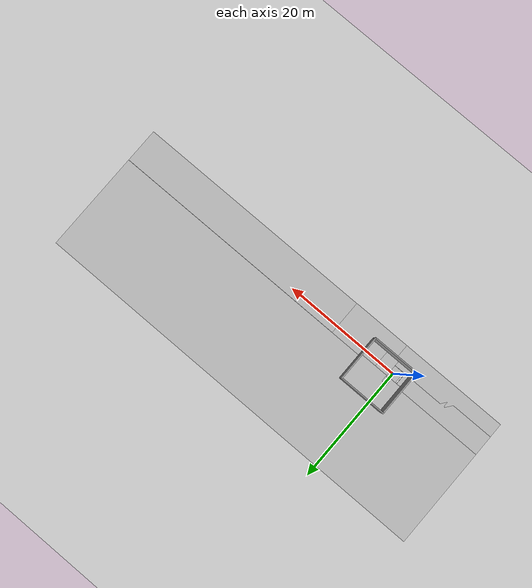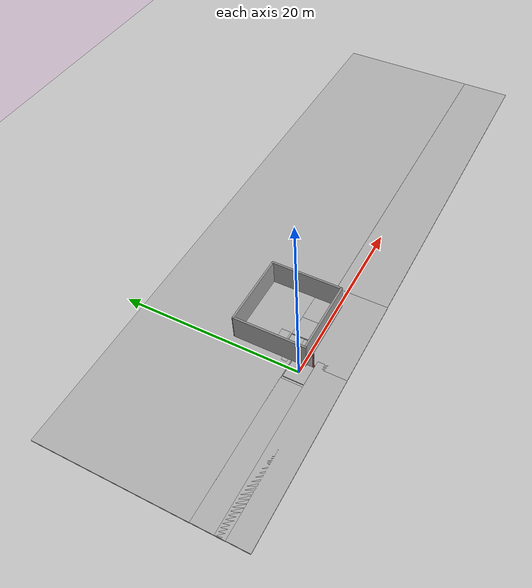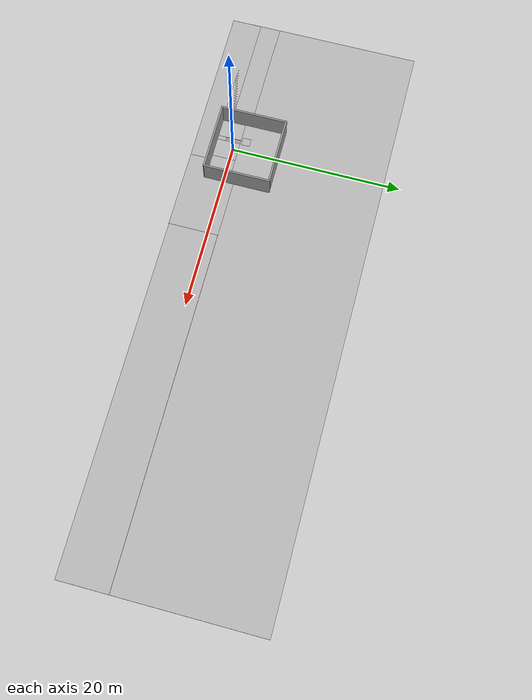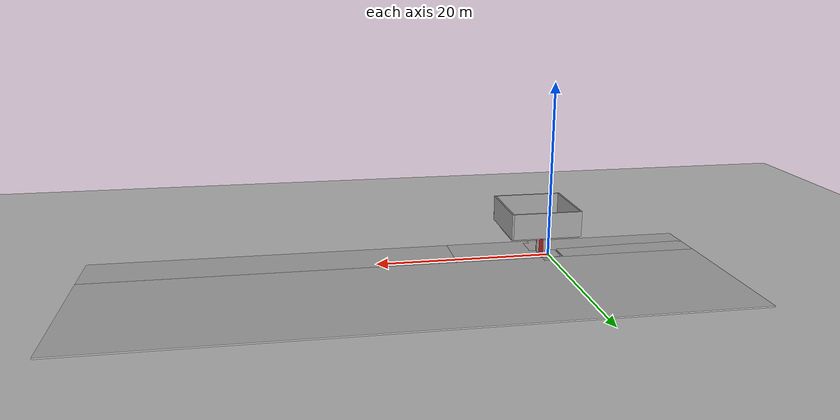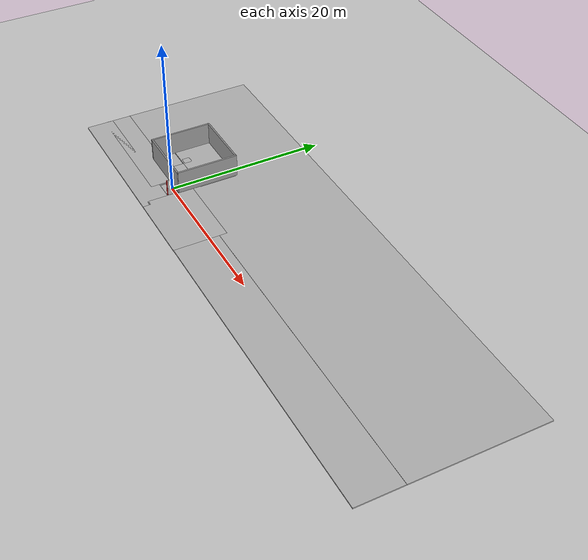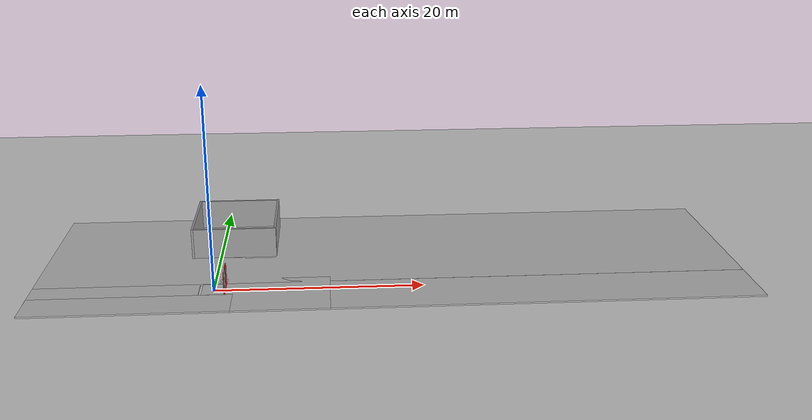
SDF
<sdf version="1.6">
 <world name="default">
  <light name="sun" type="directional">
   <pose>0 0 10 0 -0 0</pose>
   <diffuse>0.8 0.8 0.8 1</diffuse>
   <specular>0.1 0.1 0.1 1</specular>
   <attenuation>
    <range>1000</range>
    <constant>0.9</constant>
    <linear>0.01</linear>
    <quadratic>0.001</quadratic>
   </attenuation>
   <direction>-0.5 0.5 -1</direction>
  </light>
  <model name="switch0">
   <pose>0.796934 1.88997 0.150508 -0 -2e-06 0.006404</pose>
   <link name="link">
    <collision name="collision">
     <geometry><box><size>0.672513 0.615037 0.000748</size></box></geometry>
    </collision>
    <visual name="visual"><geometry><box><size>0.672513 0.615037 0.000748</size></box></geometry></visual>
    <inertial>
     <inertia><ixx>1</ixx><ixy>0</ixy><ixz>0</ixz><iyy>1</iyy><iyz>0</iyz><izz>1</izz></inertia>
     <mass>1</mass>
    </inertial>
   </link>
   <plugin name="model_push" filename="libmodel_push.so"/>
  </model>
  <model name="switch1">
   <pose>0.740695 1.8503 4.15491 0 -0 0.014774</pose>
   <link name="link">
    <collision name="collision">
     <geometry><box><size>0.878691 0.928055 0.000571</size></box></geometry>
    </collision>
    <visual name="visual"><geometry><box><size>0.878691 0.928055 0.000571</size></box></geometry></visual>
    <inertial>
     <inertia><ixx>1</ixx><ixy>0</ixy><ixz>0</ixz><iyy>1</iyy><iyz>0</iyz><izz>1</izz></inertia>
     <mass>1</mass>
    </inertial>
   </link>
   <plugin name="model_push" filename="libmodel_push.so"/>
  </model>
  <model name="ground_plane">
   <static>1</static>
   <link name="link">
    <collision name="collision">
     <geometry><plane><normal>0 0 1</normal><size>100 100</size></plane></geometry>
     <surface><friction><ode><mu>100</mu><mu2>50</mu2></ode></friction></surface>
    </collision>
    <visual name="visual">
     <cast_shadows>0</cast_shadows>
     <geometry><plane><normal>0 0 1</normal><size>100 100</size></plane></geometry>
     <material>
      <script><uri>file://media/materials/scripts/gazebo.material</uri><name>Gazebo/Grey</name></script>
     </material>
    </visual>
   </link>
  </model>
  <plugin name="elevator_event_plugin" filename="libSimEventsPlugin.so">
   <region><name>region1</name><volume><min>-1.0 1.5 0</min><max>-0.2 2.0 1</max></volume></region>
   <region><name>region2</name><volume><min>-1.0 1.5 3.5</min><max>-0.2 2.0 4.5</max></volume></region>
   <event>
    <name>region1_event</name>
    <type>occupied</type>
    <region>region1</region>
    <topic>~/elevator</topic>
    <msg_data>0</msg_data>
   </event>
   <event>
    <name>region2_event</name>
    <type>occupied</type>
    <region>region2</region>
    <topic>~/elevator</topic>
    <msg_data>1</msg_data>
   </event>
  </plugin>
  <model name="elevator">
   <pose>0 0 0.075 0 0 -2e-06</pose>
   <link name="link">
    <inertial>
     <mass>800</mass>
     <inertia><ixx>1</ixx><ixy>0</ixy><ixz>0</ixz><iyy>1</iyy><iyz>0</iyz><izz>1</izz></inertia>
    </inertial>
    <collision name="floor_collision"><geometry><box><size>2.25 2.25 0.15</size></box></geometry></collision>
    <visual name="floor_visual"><geometry><box><size>2.25 2.25 0.15</size></box></geometry></visual>
    <collision name="wall1_collision">
     <pose>1.0745 0.5725 1.125 0 -0 0</pose>
     <geometry><box><size>0.1 1.15 2.25</size></box></geometry>
    </collision>
    <visual name="wall1_visual">
     <pose>1.0745 0.5725 1.125 0 -0 0</pose>
     <geometry><box><size>0.1 1.15 2.25</size></box></geometry>
     <material><script><name>Gazebo/Red</name><uri>__default__</uri></script></material>
    </visual>
    <collision name="wall2_collision">
     <pose>1.0745 -1.0625 1.125 0 -0 0</pose>
     <geometry><box><size>0.1 0.125 2.25</size></box></geometry>
    </collision>
    <visual name="wall2_visual">
     <pose>1.0745 -1.0625 1.125 0 -0 0</pose>
     <geometry><box><size>0.1 0.125 2.25</size></box></geometry>
     <material><script><name>Gazebo/Red</name><uri>__default__</uri></script></material>
    </visual>
   </link>
   <link name="door">
    <pose>1.0745 -0.5 1.125 0 -0 0</pose>
    <collision name="collision"><geometry><box><size>0.08 1 2.25</size></box></geometry></collision>
    <visual name="visual"><geometry><box><size>0.08 1 2.25</size></box></geometry></visual>
    <inertial>
     <inertia><ixx>1</ixx><ixy>0</ixy><ixz>0</ixz><iyy>1</iyy><iyz>0</iyz><izz>1</izz></inertia>
     <mass>1</mass>
    </inertial>
   </link>
   <joint name="door" type="prismatic">
    <parent>link</parent>
    <child>door</child>
    <axis>
     <xyz>0 1 0</xyz>
     <limit><lower>0</lower><upper>1</upper><effort>10</effort></limit>
     <dynamics>
      <damping>2</damping>
      <spring_reference>0</spring_reference>
      <spring_stiffness>0</spring_stiffness>
     </dynamics>
     <use_parent_model_frame>0</use_parent_model_frame>
    </axis>
   </joint>
   <joint name="lift" type="prismatic">
    <parent>world</parent>
    <child>link</child>
    <axis>
     <xyz>0 0 1</xyz>
     <limit><lower>0</lower><upper>10</upper><effort>100000</effort></limit>
     <dynamics>
      <damping>50</damping>
      <spring_reference>0</spring_reference>
      <spring_stiffness>0</spring_stiffness>
     </dynamics>
     <use_parent_model_frame>0</use_parent_model_frame>
    </axis>
    <physics>
     <ode><implicit_spring_damper>1</implicit_spring_damper><limit><cfm>0</cfm><erp>0.2</erp></limit></ode>
    </physics>
   </joint>
   <plugin name="elevator_plugin" filename="libElevatorPlugin.so">
    <lift_joint>elevator::lift</lift_joint>
    <door_joint>elevator::door</door_joint>
    <floor_height>4.0775</floor_height>
    <door_wait_time>12</door_wait_time>
    <topic>~/elevator</topic>
   </plugin>
  </model>
  <gravity>0 0 -9.8</gravity>
  <magnetic_field>6e-06 2.3e-05 -4.2e-05</magnetic_field>
  <atmosphere type="adiabatic"/>
  <physics name="default_physics" default="0" type="ode">
   <max_step_size>0.001</max_step_size>
   <real_time_factor>1</real_time_factor>
   <real_time_update_rate>1000</real_time_update_rate>
  </physics>
  <scene><ambient>0.4 0.4 0.4 1</ambient><background>0.7 0.7 0.7 1</background><shadows>1</shadows></scene>
  <spherical_coordinates>
   <surface_model>EARTH_WGS84</surface_model>
   <latitude_deg>0</latitude_deg>
   <longitude_deg>0</longitude_deg>
   <elevation>0</elevation>
   <heading_deg>0</heading_deg>
  </spherical_coordinates>
  <model name="floor0_clone_3_clone_clone">
   <pose>2.34262 3.54893 4.07963 0 -0 0</pose>
   <static>1</static>
   <link name="link">
    <collision name="floor_collision">
     <geometry><box><size>7.57512 4.64073 0.15</size></box></geometry>
    </collision>
    <visual name="floor_visual"><geometry><box><size>7.57512 4.64073 0.15</size></box></geometry></visual>
   </link>
  </model>
  <model name="floor0_clone_4_clone">
   <pose>17.3406 9.66533 0.078192 0 -0 0</pose>
   <static>1</static>
   <link name="link">
    <collision name="floor_collision">
     <geometry><box><size>69.1687 16.8837 0.143883</size></box></geometry>
    </collision>
    <visual name="floor_visual"><geometry><box><size>69.1687 16.8837 0.143883</size></box></geometry></visual>
   </link>
  </model>
  <model name="floor0_clone_4_clone_clone">
   <pose>30.8448 -1.6918 0.077835 0 -0 0</pose>
   <static>1</static>
   <link name="link">
    <collision name="floor_collision">
     <geometry><box><size>42.1507 5.80214 0.143883</size></box></geometry>
    </collision>
    <visual name="floor_visual"><geometry><box><size>42.1507 5.80214 0.143883</size></box></geometry></visual>
   </link>
  </model>
  <model name="floor0_clone_4_clone_clone_0">
   <pose>6.0659 -1.21178 0.078192 0 -0 0</pose>
   <static>1</static>
   <link name="link">
    <collision name="floor_collision">
     <geometry><box><size>9.87802 6.81923 0.143883</size></box></geometry>
    </collision>
    <visual name="floor_visual"><geometry><box><size>9.87802 6.81923 0.143883</size></box></geometry></visual>
   </link>
  </model>
  <model name="floor0_clone_4_clone_clone_0_clone">
   <pose>-7.68508 -2.88449 0.078192 0 -0 0</pose>
   <static>1</static>
   <link name="link">
    <collision name="floor_collision">
     <geometry><box><size>19.0509 3.48417 0.143883</size></box></geometry>
    </collision>
    <visual name="floor_visual"><geometry><box><size>19.0509 3.48417 0.143883</size></box></geometry></visual>
   </link>
  </model>
  <model name="floor0_clone_4_clone_clone_0_clone_clone">
   <pose>-9.30862 -0.471439 0.078192 0 -0 0</pose>
   <static>1</static>
   <link name="link">
    <collision name="floor_collision">
     <geometry><box><size>15.8428 3.48417 0.143883</size></box></geometry>
    </collision>
    <visual name="floor_visual"><geometry><box><size>15.8428 3.48417 0.143883</size></box></geometry></visual>
   </link>
  </model>
  <model name="floor0_clone_3_clone_clone_clone">
   <pose>2.51986 1.31698 4.07404 0 -0 0</pose>
   <static>1</static>
   <link name="link">
    <collision name="floor_collision">
     <geometry><box><size>2.77074 5.44895 0.15</size></box></geometry>
    </collision>
    <visual name="floor_visual"><geometry><box><size>2.77074 5.44895 0.15</size></box></geometry></visual>
   </link>
  </model>
  <model name="grey_wall_0">
   <static>1</static>
   <link name="link">
    <pose>0 0 1.4 0 -0 0</pose>
    <collision name="collision"><geometry><box><size>7.5 0.2 2.8</size></box></geometry></collision>
    <visual name="visual">
     <cast_shadows>0</cast_shadows>
     <geometry><box><size>7.5 0.2 2.8</size></box></geometry>
     <material>
      <script>
       <uri>model://grey_wall/materials/scripts</uri>
       <uri>model://grey_wall/materials/textures</uri>
       <name>vrc/grey_wall</name>
      </script>
     </material>
    </visual>
   </link>
   <pose>2.39747 -1.51229 4.11012 0 -0 0</pose>
  </model>
  <model name="grey_wall_0_clone">
   <static>1</static>
   <link name="link">
    <pose>0 0 1.4 0 -0 0</pose>
    <collision name="collision"><geometry><box><size>7.5 0.2 2.8</size></box></geometry></collision>
    <visual name="visual">
     <cast_shadows>0</cast_shadows>
     <geometry><box><size>7.5 0.2 2.8</size></box></geometry>
     <material>
      <script>
       <uri>model://grey_wall/materials/scripts</uri>
       <uri>model://grey_wall/materials/textures</uri>
       <name>vrc/grey_wall</name>
      </script>
     </material>
    </visual>
   </link>
   <pose>-1.45433 2.13881 4.11012 0 0 -1.56981</pose>
  </model>
  <model name="grey_wall_0_clone_clone">
   <static>1</static>
   <link name="link">
    <pose>0 0 1.4 0 -0 0</pose>
    <collision name="collision"><geometry><box><size>7.5 0.2 2.8</size></box></geometry></collision>
    <visual name="visual">
     <cast_shadows>0</cast_shadows>
     <geometry><box><size>7.5 0.2 2.8</size></box></geometry>
     <material>
      <script>
       <uri>model://grey_wall/materials/scripts</uri>
       <uri>model://grey_wall/materials/textures</uri>
       <name>vrc/grey_wall</name>
      </script>
     </material>
    </visual>
   </link>
   <pose>6.06207 2.237 4.11012 0 0 -1.56981</pose>
  </model>
  <model name="grey_wall_0_clone_0">
   <static>1</static>
   <link name="link">
    <pose>0 0 1.4 0 -0 0</pose>
    <collision name="collision"><geometry><box><size>7.5 0.2 2.8</size></box></geometry></collision>
    <visual name="visual">
     <cast_shadows>0</cast_shadows>
     <geometry><box><size>7.5 0.2 2.8</size></box></geometry>
     <material>
      <script>
       <uri>model://grey_wall/materials/scripts</uri>
       <uri>model://grey_wall/materials/textures</uri>
       <name>vrc/grey_wall</name>
      </script>
     </material>
    </visual>
   </link>
   <pose>2.2033 5.86186 4.11012 0 -0 0</pose>
  </model>
  <model name="floor0_clone_3_clone_clone_clone_clone">
   <pose>4.66612 1.14173 4.07411 0 -0 0</pose>
   <static>1</static>
   <link name="link">
    <collision name="floor_collision">
     <geometry><box><size>2.77074 5.44895 0.15</size></box></geometry>
    </collision>
    <visual name="floor_visual"><geometry><box><size>2.77074 5.44895 0.15</size></box></geometry></visual>
   </link>
  </model>
 </world>
</sdf>
